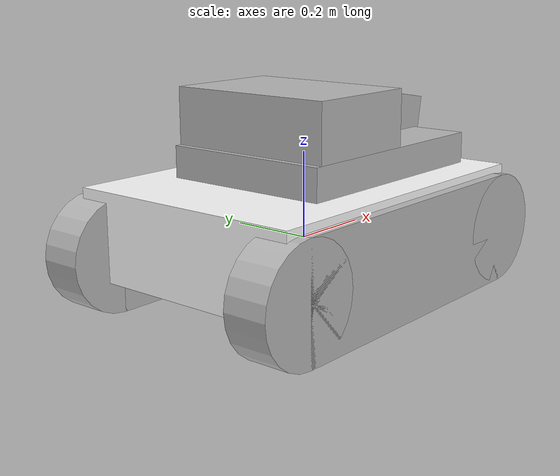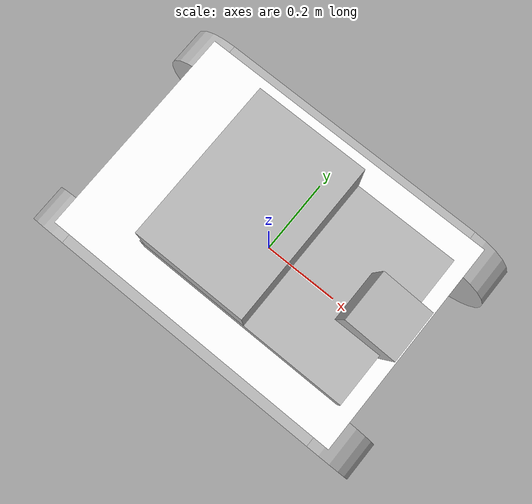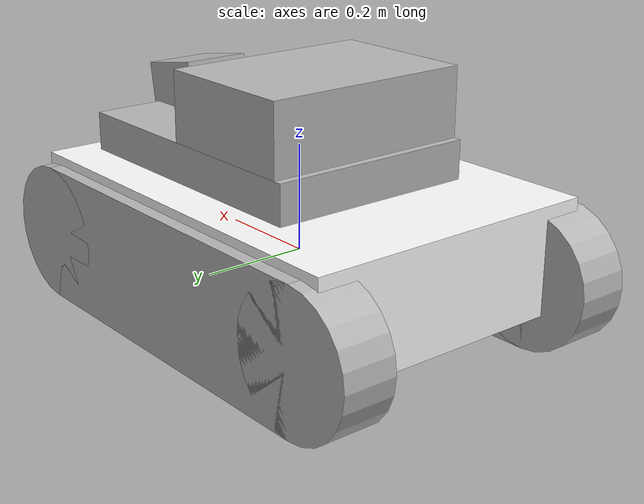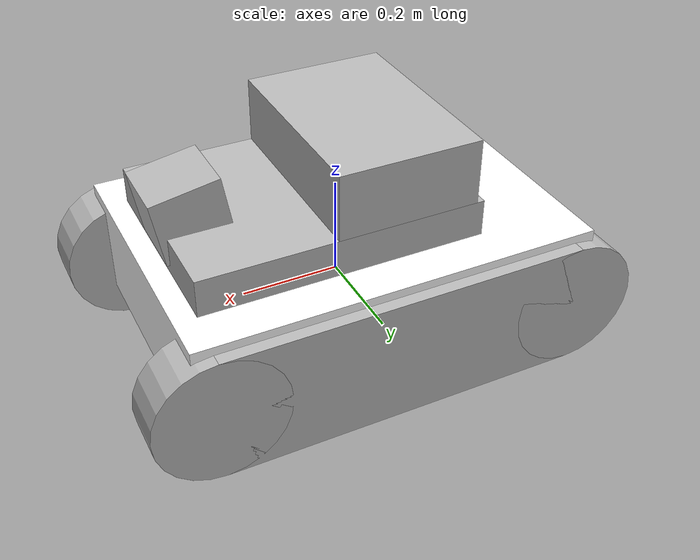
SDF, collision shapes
<?xml version='1.0' encoding='utf-8'?>
<sdf version="1.6">
    <model name="ctu_cras_norlab_marmotte_sensor_config_1">
        <link name="base_link">
            <pose frame="">0 0 0 0 -0 0</pose>
            <inertial>
                <pose frame="">0.0 0.0 0.0 0 0 0</pose>
                <mass>29.053</mass>
                <!-- base link + 8 wheels: 29.053 + 8*1.5 = 41.053 -->
                <inertia>
                    <ixx>2.411</ixx>
                    <ixy>0.0</ixy>
                    <ixz>0.0</ixz>
                    <iyy>4.173</iyy>
                    <iyz>0.0</iyz>
                    <izz>4.745</izz>
                </inertia>
            </inertial>
            <collision name="base_link_collision_bottom">
                <pose frame="">0 0 0.046 0 0 0</pose>
                <geometry>
                    <box>
                        <size>0.80 0.5709 0.2</size>
                    </box>
                </geometry>
            </collision>
            <visual name="Body_visual">
                <pose>0 0 -0.135 0 0 1.57</pose>
                <geometry>
                    <mesh>
                        <uri>meshes/hd2_marble_base_body_metric.dae</uri>
                    </mesh>
                </geometry>
                <material>
                    <diffuse>1.0 1.0 1.0</diffuse>
                    <specular>1.0 1.0 1.0</specular>
                    <pbr>
                        <metal>
                            <albedo_map>materials/textures/HD2_Albedo.png</albedo_map>
                            <metalness_map>materials/textures/HD2_Metalness.png</metalness_map>
                            <roughness_map>materials/textures/HD2_Roughness.png</roughness_map>
                        </metal>
                    </pbr>
                    <!-- fallback to script if no PBR support-->
                    <script>
                        <uri>materials/scripts/</uri>
                        <uri>materials/textures/</uri>
                        <name>HD/HD2_Diffuse</name>
                    </script>
                </material>
            </visual>
        </link>
        <link name="sensor_rack">
            <inertial>
                <!-- Based on the CAD of the sensor rack (metal plates, ITEM tubes, sensors) -->
                <mass>10.40255</mass>
                <inertia>
                    <ixx>0.193</ixx>
                    <ixy>-0.0031</ixy>
                    <ixz>0.00912</ixz>
                    <iyy>0.301</iyy>
                    <iyz>0.00313</iyz>
                    <izz>0.35676</izz>
                </inertia>
                <pose frame="">0.28 0.2 0.06 0 -0 0</pose>
            </inertial>
            <pose frame="">-0.198535 -0.198243 0.068995 -1e-06 -0 -1.3e-05</pose>
            <self_collide>0</self_collide>
            <enable_wind>0</enable_wind>
            <kinematic>0</kinematic>
            <visual name="visual">
                <pose frame="">0 0 0 0 -0 0</pose>
                <geometry>
                    <mesh>
                        <uri>meshes/sensor_rack_lowres_shallow_laser.dae</uri>
                        <scale>1 1 1</scale>
                    </mesh>
                </geometry>
                <transparency>0</transparency>
                <cast_shadows>1</cast_shadows>
            </visual>
            <collision name="collision_base">
                <laser_retro>0</laser_retro>
                <max_contacts>10</max_contacts>
                <pose frame="">0.275 0.2 0.075 0 -0 0</pose>
                <geometry>
                    <box>
                        <size>0.56 0.4 0.15</size>
                    </box>
                </geometry>
                <surface>
                    <friction>
                        <ode>
                            <mu>1</mu>
                            <mu2>1</mu2>
                            <fdir1>0 0 0</fdir1>
                            <slip1>0</slip1>
                            <slip2>0</slip2>
                        </ode>
                    </friction>
                    <contact>
                        <collide_without_contact>0</collide_without_contact>
                        <collide_without_contact_bitmask>1</collide_without_contact_bitmask>
                        <collide_bitmask>1</collide_bitmask>
                        <ode>
                            <soft_cfm>0</soft_cfm>
                            <soft_erp>0.2</soft_erp>
                            <kp>1e+13</kp>
                            <kd>1</kd>
                            <max_vel>0.01</max_vel>
                            <min_depth>0</min_depth>
                        </ode>
                    </contact>
                </surface>
            </collision>
            <collision name="collision_top">
                <laser_retro>0</laser_retro>
                <max_contacts>10</max_contacts>
                <pose frame="">0.15 0.2 0.215 0 -0 0</pose>
                <geometry>
                    <box>
                        <size>0.28 0.4 0.13</size>
                    </box>
                </geometry>
                <surface>
                    <friction>
                        <ode>
                            <mu>1</mu>
                            <mu2>1</mu2>
                            <fdir1>0 0 0</fdir1>
                            <slip1>0</slip1>
                            <slip2>0</slip2>
                        </ode>
                    </friction>
                    <contact>
                        <collide_without_contact>0</collide_without_contact>
                        <collide_without_contact_bitmask>1</collide_without_contact_bitmask>
                        <collide_bitmask>1</collide_bitmask>
                        <ode>
                            <soft_cfm>0</soft_cfm>
                            <soft_erp>0.2</soft_erp>
                            <kp>1e+13</kp>
                            <kd>1</kd>
                            <max_vel>0.01</max_vel>
                            <min_depth>0</min_depth>
                        </ode>
                    </contact>
                </surface>
            </collision>
            <collision name="collision_laser">
                <laser_retro>0</laser_retro>
                <max_contacts>10</max_contacts>
                <pose frame="">0.505 0.2 0.17 0 0.17 0</pose>
                <geometry>
                    <box>
                        <size>0.135 0.13 0.13</size>
                    </box>
                </geometry>
                <surface>
                    <friction>
                        <ode>
                            <mu>1</mu>
                            <mu2>1</mu2>
                            <fdir1>0 0 0</fdir1>
                            <slip1>0</slip1>
                            <slip2>0</slip2>
                        </ode>
                    </friction>
                    <contact>
                        <collide_without_contact>0</collide_without_contact>
                        <collide_without_contact_bitmask>1</collide_without_contact_bitmask>
                        <collide_bitmask>1</collide_bitmask>
                        <ode>
                            <soft_cfm>0</soft_cfm>
                            <soft_erp>0.2</soft_erp>
                            <kp>1e+13</kp>
                            <kd>1</kd>
                            <max_vel>0.01</max_vel>
                            <min_depth>0</min_depth>
                        </ode>
                    </contact>
                </surface>
            </collision>
            <sensor name="imu_sensor" type="imu">
                <always_on>1</always_on>
                <update_rate>50</update_rate>
                <imu>
                    <enable_orientation>0</enable_orientation>
                    <angular_velocity>
                        <x>
                            <noise type="gaussian">
                                <mean>0</mean>
                                <stddev>0.009</stddev>
                                <bias_mean>0.00075</bias_mean>
                                <bias_stddev>0.005</bias_stddev>
                                <dynamic_bias_stddev>0.00002</dynamic_bias_stddev>
                                <dynamic_bias_correlation_time>400.0</dynamic_bias_correlation_time>
                                <precision>0.00025</precision>
                            </noise>
                        </x>
                        <y>
                            <noise type="gaussian">
                                <mean>0</mean>
                                <stddev>0.009</stddev>
                                <bias_mean>0.00075</bias_mean>
                                <bias_stddev>0.005</bias_stddev>
                                <dynamic_bias_stddev>0.00002</dynamic_bias_stddev>
                                <dynamic_bias_correlation_time>400.0</dynamic_bias_correlation_time>
                                <precision>0.00025</precision>
                            </noise>
                        </y>
                        <z>
                            <noise type="gaussian">
                                <mean>0</mean>
                                <stddev>0.009</stddev>
                                <bias_mean>0.00075</bias_mean>
                                <bias_stddev>0.005</bias_stddev>
                                <dynamic_bias_stddev>0.00002</dynamic_bias_stddev>
                                <dynamic_bias_correlation_time>400.0</dynamic_bias_correlation_time>
                                <precision>0.00025</precision>
                            </noise>
                        </z>
                    </angular_velocity>
                    <linear_acceleration>
                        <x>
                            <noise type="gaussian">
                                <mean>0</mean>
                                <stddev>0.021</stddev>
                                <bias_mean>0.05</bias_mean>
                                <bias_stddev>0.0075</bias_stddev>
                                <dynamic_bias_stddev>0.000375</dynamic_bias_stddev>
                                <dynamic_bias_correlation_time>175.0</dynamic_bias_correlation_time>
                                <precision>0.005</precision>
                            </noise>
                        </x>
                        <y>
                            <noise type="gaussian">
                                <mean>0</mean>
                                <stddev>0.021</stddev>
                                <bias_mean>0.05</bias_mean>
                                <bias_stddev>0.0075</bias_stddev>
                                <dynamic_bias_stddev>0.000375</dynamic_bias_stddev>
                                <dynamic_bias_correlation_time>175.0</dynamic_bias_correlation_time>
                                <precision>0.005</precision>
                            </noise>
                        </y>
                        <z>
                            <noise type="gaussian">
                                <mean>0</mean>
                                <stddev>0.021</stddev>
                                <bias_mean>0.05</bias_mean>
                                <bias_stddev>0.0075</bias_stddev>
                                <dynamic_bias_stddev>0.000375</dynamic_bias_stddev>
                                <dynamic_bias_correlation_time>175.0</dynamic_bias_correlation_time>
                                <precision>0.005</precision>
                            </noise>
                        </z>
                    </linear_acceleration>
                </imu>
            </sensor>
            <sensor name="camera_0" type="camera">
                <camera name="camera_0">
                    <horizontal_fov>1.50971</horizontal_fov>
                    <image>
                        <width>1920</width>
                        <height>1200</height>
                        <format>R8G8B8</format>
                    </image>
                    <clip>
                        <near>0.4</near>
                        <far>300</far>
                    </clip>
                    <noise>
                        <type>gaussian</type>
                        <mean>0</mean>
                        <stddev>0.007</stddev>
                    </noise>
                    <lens>
                        <intrinsics>
                            <fx>1020.51</fx>
                            <fy>1020.51</fy>
                            <cx>959.5</cx>
                            <cy>599.5</cy>
                            <s>0</s>
                        </intrinsics>
                        <type>stereographic</type>
                        <scale_to_hfov>1</scale_to_hfov>
                    </lens>
                </camera>
                <always_on>1</always_on>
                <update_rate>9</update_rate>
                <visualize>1</visualize>
                <pose frame="">0.34655 0.07561 0.08992 0 -0.26 -0.58</pose>
            </sensor>
            <sensor name="camera_1" type="camera">
                <camera name="camera_1">
                    <horizontal_fov>1.50971</horizontal_fov>
                    <image>
                        <width>1920</width>
                        <height>1200</height>
                        <format>R8G8B8</format>
                    </image>
                    <clip>
                        <near>0.4</near>
                        <far>300</far>
                    </clip>
                    <noise>
                        <type>gaussian</type>
                        <mean>0</mean>
                        <stddev>0.007</stddev>
                    </noise>
                    <lens>
                        <intrinsics>
                            <fx>1020.51</fx>
                            <fy>1020.51</fy>
                            <cx>959.5</cx>
                            <cy>599.5</cy>
                            <s>0</s>
                        </intrinsics>
                        <type>stereographic</type>
                        <scale_to_hfov>1</scale_to_hfov>
                    </lens>
                </camera>
                <always_on>1</always_on>
                <update_rate>9</update_rate>
                <visualize>1</visualize>
                <pose frame="">0.16082 0.10326 0.08992 0 -0.26 -1.88</pose>
            </sensor>
            <sensor name="camera_2" type="camera">
                <camera name="camera_2">
                    <horizontal_fov>1.50971</horizontal_fov>
                    <image>
                        <width>1920</width>
                        <height>1200</height>
                        <format>R8G8B8</format>
                    </image>
                    <clip>
                        <near>0.4</near>
                        <far>300</far>
                    </clip>
                    <noise>
                        <type>gaussian</type>
                        <mean>0</mean>
                        <stddev>0.007</stddev>
                    </noise>
                    <lens>
                        <intrinsics>
                            <fx>1020.51</fx>
                            <fy>1020.51</fy>
                            <cx>959.5</cx>
                            <cy>599.5</cy>
                            <s>0</s>
                        </intrinsics>
                        <type>stereographic</type>
                        <scale_to_hfov>1</scale_to_hfov>
                    </lens>
                </camera>
                <always_on>1</always_on>
                <update_rate>9</update_rate>
                <pose frame="">0.08658 0.2358 0.08992 0 -0.26 -3.14</pose>
                <visualize>1</visualize>
            </sensor>
            <sensor name="camera_3" type="camera">
                <camera name="camera_3">
                    <horizontal_fov>1.50971</horizontal_fov>
                    <image>
                        <width>1920</width>
                        <height>1200</height>
                        <format>R8G8B8</format>
                    </image>
                    <clip>
                        <near>0.4</near>
                        <far>300</far>
                    </clip>
                    <noise>
                        <type>gaussian</type>
                        <mean>0</mean>
                        <stddev>0.007</stddev>
                    </noise>
                    <lens>
                        <intrinsics>
                            <fx>1020.51</fx>
                            <fy>1020.51</fy>
                            <cx>959.5</cx>
                            <cy>599.5</cy>
                            <s>0</s>
                        </intrinsics>
                        <type>stereographic</type>
                        <scale_to_hfov>1</scale_to_hfov>
                    </lens>
                </camera>
                <always_on>1</always_on>
                <update_rate>9</update_rate>
                <pose frame="">0.22978 0.31824 0.08992 0 -0.26 1.88</pose>
                <visualize>1</visualize>
            </sensor>
            <sensor name="camera_4" type="camera">
                <camera name="camera_4">
                    <horizontal_fov>1.50971</horizontal_fov>
                    <image>
                        <width>1920</width>
                        <height>1200</height>
                        <format>R8G8B8</format>
                    </image>
                    <clip>
                        <near>0.4</near>
                        <far>300</far>
                    </clip>
                    <noise>
                        <type>gaussian</type>
                        <mean>0</mean>
                        <stddev>0.007</stddev>
                    </noise>
                    <lens>
                        <intrinsics>
                            <fx>1020.51</fx>
                            <fy>1020.51</fy>
                            <cx>959.5</cx>
                            <cy>599.5</cy>
                            <s>0</s>
                        </intrinsics>
                        <type>stereographic</type>
                        <scale_to_hfov>1</scale_to_hfov>
                    </lens>
                </camera>
                <always_on>1</always_on>
                <update_rate>9</update_rate>
                <pose frame="">0.38916 0.26483 0.08992 0 -0.26 0.58</pose>
                <visualize>1</visualize>
            </sensor>
            <sensor name="camera_5" type="camera">
                <camera name="camera_5">
                    <horizontal_fov>1.50971</horizontal_fov>
                    <image>
                        <width>1920</width>
                        <height>1200</height>
                        <format>R8G8B8</format>
                    </image>
                    <clip>
                        <near>0.4</near>
                        <far>300</far>
                    </clip>
                    <noise>
                        <type>gaussian</type>
                        <mean>0</mean>
                        <stddev>0.007</stddev>
                    </noise>
                    <lens>
                        <intrinsics>
                            <fx>1020.51</fx>
                            <fy>1020.51</fy>
                            <cx>959.5</cx>
                            <cy>599.5</cy>
                            <s>0</s>
                        </intrinsics>
                        <type>stereographic</type>
                        <scale_to_hfov>1</scale_to_hfov>
                    </lens>
                </camera>
                <always_on>1</always_on>
                <update_rate>9</update_rate>
                <pose frame="">0.16561 0.19955 0.20529 0 -1.57 0.0</pose>
                <visualize>1</visualize>
            </sensor>
            <sensor name="camera_realsense" type="rgbd_camera">
                <camera name="camera_realsense">
                    <horizontal_fov>1.5184</horizontal_fov>
                    <lens>
                        <intrinsics>
                            <fx>337.22195</fx>
                            <fy>337.22195</fy>
                            <cx>320.5</cx>
                            <cy>240.5</cy>
                            <s>0</s>
                        </intrinsics>
                    </lens>
                    <distortion>
                        <k1>0.0</k1>
                        <k2>0.0</k2>
                        <k3>0.0</k3>
                        <p1>0.0</p1>
                        <p2>0.0</p2>
                        <center>0.5 0.5</center>
                    </distortion>
                    <image>
                        <width>640</width>
                        <height>480</height>
                        <format>R8G8B8</format>
                    </image>
                    <clip>
                        <near>0.4</near>
                        <far>300</far>
                    </clip>
                    <depth_camera>
                        <clip>
                            <near>0.4</near>
                            <far>10</far>
                        </clip>
                    </depth_camera>
                    <noise>
                        <type>gaussian</type>
                        <mean>0</mean>
                        <stddev>0.007</stddev>
                    </noise>
                </camera>
                <always_on>1</always_on>
                <update_rate>30</update_rate>
                <pose frame="">0.01923 0.18205 0.200 0.0 0.35 -3.14</pose>
            </sensor>
            <!-- Robosense RS-LiDAR-16 or Leishen C16 Series -->
            <sensor name="front_lidar" type="gpu_lidar">
                <update_rate>10</update_rate>
                <visualize>1</visualize>
                <lidar>
                    <scan>
                        <horizontal>
                            <samples>1800</samples>
                            <resolution>1</resolution>
                            <min_angle>-3.141592</min_angle>
                            <max_angle>3.141592</max_angle>
                        </horizontal>
                        <vertical>
                            <samples>16</samples>
                            <resolution>1</resolution>
                            <min_angle>-0.26</min_angle>
                            <max_angle>0.26</max_angle>
                        </vertical>
                    </scan>
                    <range>
                        <min>0.2</min>
                        <max>150</max>
                        <resolution>0.01</resolution>
                    </range>
                    <noise>
                        <type>gaussian</type>
                        <mean>0</mean>
                        <stddev>0.01</stddev>
                    </noise>
                </lidar>
                <pose frame="">0.507 0.19955 0.20879 0 0.17 0</pose>
            </sensor>
            <light name="light_0" type="spot">
                <pose>0.40354 0.11441 0.09843 0 -1.83 -0.58</pose>
                <cast_shadows>1</cast_shadows>
                <attenuation>
                    <range>50</range>
                    <linear>0</linear>
                    <constant>0.1</constant>
                    <quadratic>0.0025</quadratic>
                </attenuation>
                <diffuse>0.5 0.5 0.4 1</diffuse>
                <specular>0.5 0.5 0.4 1</specular>
                <spot>
                    <inner_angle>1.4</inner_angle>
                    <!-- Matching the lens FOV -->
                    <outer_angle>1.5</outer_angle>
                    <falloff>1</falloff>
                </spot>
                <direction>0 0 -1</direction>
            </light>
            <light name="light_1" type="spot">
                <pose>0.21534 0.06105 0.09843 0 -1.83 -1.88</pose>
                <cast_shadows>1</cast_shadows>
                <attenuation>
                    <range>50</range>
                    <linear>0</linear>
                    <constant>0.1</constant>
                    <quadratic>0.0025</quadratic>
                </attenuation>
                <diffuse>0.5 0.5 0.4 1</diffuse>
                <specular>0.5 0.5 0.4 1</specular>
                <spot>
                    <inner_angle>1.4</inner_angle>
                    <outer_angle>1.5</outer_angle>
                    <falloff>1</falloff>
                </spot>
                <direction>0 0 -1</direction>
            </light>
            <light name="light_2" type="spot">
                <pose>0.06329 0.17091 0.09843 0 -1.83 -3.14</pose>
                <cast_shadows>1</cast_shadows>
                <attenuation>
                    <range>50</range>
                    <linear>0</linear>
                    <constant>0.1</constant>
                    <quadratic>0.0025</quadratic>
                </attenuation>
                <diffuse>0.5 0.5 0.4 1</diffuse>
                <specular>0.5 0.5 0.4 1</specular>
                <spot>
                    <inner_angle>1.4</inner_angle>
                    <outer_angle>1.5</outer_angle>
                    <falloff>1</falloff>
                </spot>
                <direction>0 0 -1</direction>
            </light>
            <light name="light_3" type="spot">
                <pose>0.16087 0.32035 0.09843 0 -1.83 1.88</pose>
                <cast_shadows>1</cast_shadows>
                <attenuation>
                    <range>50</range>
                    <linear>0</linear>
                    <constant>0.1</constant>
                    <quadratic>0.0025</quadratic>
                </attenuation>
                <diffuse>0.5 0.5 0.4 1</diffuse>
                <specular>0.5 0.5 0.4 1</specular>
                <spot>
                    <inner_angle>1.4</inner_angle>
                    <outer_angle>1.5</outer_angle>
                    <falloff>1</falloff>
                </spot>
                <direction>0 0 -1</direction>
            </light>
            <light name="light_4" type="spot">
                <pose>0.36987 0.33102 0.09843 0 -1.83 0.58</pose>
                <cast_shadows>1</cast_shadows>
                <attenuation>
                    <range>50</range>
                    <linear>0</linear>
                    <constant>0.1</constant>
                    <quadratic>0.0025</quadratic>
                </attenuation>
                <diffuse>0.5 0.5 0.4 1</diffuse>
                <specular>0.5 0.5 0.4 1</specular>
                <spot>
                    <inner_angle>1.4</inner_angle>
                    <outer_angle>1.5</outer_angle>
                    <falloff>1</falloff>
                </spot>
                <direction>0 0 -1</direction>
            </light>
            <light name="light_5" type="spot">
                <pose>0.22561 0.19955 0.22567 0 3.14 0</pose>
                <cast_shadows>1</cast_shadows>
                <attenuation>
                    <range>50</range>
                    <linear>0</linear>
                    <constant>0.1</constant>
                    <quadratic>0.0025</quadratic>
                </attenuation>
                <diffuse>0.5 0.5 0.4 1</diffuse>
                <specular>0.5 0.5 0.4 1</specular>
                <spot>
                    <inner_angle>1.4</inner_angle>
                    <outer_angle>1.5</outer_angle>
                    <falloff>1</falloff>
                </spot>
                <direction>0 0 -1</direction>
            </light>
            <light name="light_front_right" type="spot">
                <pose>0.28511 0.08955 0.19767 0 -1.570 0</pose>
                <cast_shadows>1</cast_shadows>
                <attenuation>
                    <range>50</range>
                    <linear>0</linear>
                    <constant>0.1</constant>
                    <quadratic>0.0025</quadratic>
                </attenuation>
                <diffuse>0.5 0.5 0.4 1</diffuse>
                <specular>0.5 0.5 0.4 1</specular>
                <spot>
                    <inner_angle>1.4</inner_angle>
                    <outer_angle>1.5</outer_angle>
                    <falloff>1</falloff>
                </spot>
                <direction>0 0 -1</direction>
            </light>
            <light name="light_front_left" type="spot">
                <pose>0.28511 0.30955 0.19767 0 -1.570 0</pose>
                <cast_shadows>1</cast_shadows>
                <attenuation>
                    <range>50</range>
                    <linear>0</linear>
                    <constant>0.1</constant>
                    <quadratic>0.0025</quadratic>
                </attenuation>
                <diffuse>0.5 0.5 0.4 1</diffuse>
                <specular>0.5 0.5 0.4 1</specular>
                <spot>
                    <inner_angle>1.4</inner_angle>
                    <outer_angle>1.5</outer_angle>
                    <falloff>1</falloff>
                </spot>
                <direction>0 0 -1</direction>
            </light>
        </link>
        <joint name="base_link_JOINT_0" type="fixed">
            <parent>base_link</parent>
            <child>sensor_rack</child>
            <pose frame="">0 0 0 0 -0 0</pose>
            <physics>
                <ode>
                    <limit>
                        <cfm>0</cfm>
                        <erp>0.2</erp>
                    </limit>
                    <suspension>
                        <cfm>0</cfm>
                        <erp>0.2</erp>
                    </suspension>
                </ode>
            </physics>
        </joint>
        <!-- Left Track  -->
        <link name="left_track">
            <pose frame="">0 0.26 0.00 0 -0 0</pose>
            <inertial>
                <pose frame="">0 0 0 0 -0 0</pose>
                <mass>6.0</mass>
                <inertia>
                    <!-- Inertia of a 6 kg box 0.1x0.258x0.72 m -->
                    <ixx>0.03828</ixx>
                    <ixy>0</ixy>
                    <ixz>0</ixz>
                    <iyy>0.2925</iyy>
                    <iyz>0</iyz>
                    <izz>0.2642</izz>
                </inertia>
            </inertial>
            <collision name="front_left_wheel_link_collision">
                <pose frame="">0.360 0 0 1.5707963267948966 -0 0</pose>
                <geometry>
                    <cylinder>
                        <length>0.1</length>
                        <radius>0.129</radius>
                    </cylinder>
                </geometry>
                <surface>
                    <contact>
                        <ode>
                            <kp>1e+07</kp>
                            <kd>1</kd>
                        </ode>
                    </contact>
                    <friction>
                        <ode>
                            <mu>1</mu>
                            <mu2>150</mu2>
                            <slip1>0.001</slip1>
                            <slip2>0</slip2>
                            <fdir1>0 0 1</fdir1>
                        </ode>
                    </friction>
                </surface>
            </collision>
            <collision name="rear_left_wheel_link_collision">
                <pose frame="">-0.36 0 0 1.5707963267948966 -0 0</pose>
                <geometry>
                    <cylinder>
                        <length>0.1</length>
                        <radius>0.129</radius>
                    </cylinder>
                </geometry>
                <surface>
                    <contact>
                        <ode>
                            <kp>1e+07</kp>
                            <kd>1</kd>
                        </ode>
                    </contact>
                    <friction>
                        <ode>
                            <mu>1</mu>
                            <mu2>150</mu2>
                            <slip1>0.001</slip1>
                            <slip2>0</slip2>
                            <fdir1>0 0 1</fdir1>
                        </ode>
                    </friction>
                </surface>
            </collision>
            <collision name="left_track_box_collision">
                <geometry>
                    <box>
                        <size>0.72 0.1 0.258</size>
                    </box>
                </geometry>
                <surface>
                    <contact>
                        <ode>
                            <kp>1e+07</kp>
                            <kd>1</kd>
                        </ode>
                    </contact>
                    <friction>
                        <ode>
                            <mu>1</mu>
                            <mu2>150</mu2>
                            <slip1>0.001</slip1>
                            <slip2>0</slip2>
                            <fdir1>0 0 1</fdir1>
                        </ode>
                    </friction>
                </surface>
            </collision>
        </link>
        <joint name="left_track_j" type="fixed">
            <child>left_track</child>
            <parent>base_link</parent>
        </joint>
        <!-- Right Track  -->
        <link name="right_track">
            <pose frame="">0 -0.26 0.00 0 -0 0</pose>
            <inertial>
                <pose frame="">0 0 0 0 -0 0</pose>
                <mass>6.0</mass>
                <inertia>
                    <!-- Inertia of a 6 kg box 0.1x0.258x0.72 m -->
                    <ixx>0.03828</ixx>
                    <ixy>0</ixy>
                    <ixz>0</ixz>
                    <iyy>0.2925</iyy>
                    <iyz>0</iyz>
                    <izz>0.2642</izz>
                </inertia>
            </inertial>
            <collision name="front_right_wheel_link_collision">
                <pose frame="">0.360 0 0 1.5707963267948966 -0 0</pose>
                <geometry>
                    <cylinder>
                        <length>0.1</length>
                        <radius>0.129</radius>
                    </cylinder>
                </geometry>
                <surface>
                    <contact>
                        <ode>
                            <kp>1e+07</kp>
                            <kd>1</kd>
                        </ode>
                    </contact>
                    <friction>
                        <ode>
                            <mu>1</mu>
                            <mu2>150</mu2>
                            <slip1>0.001</slip1>
                            <slip2>0</slip2>
                            <fdir1>0 0 1</fdir1>
                        </ode>
                    </friction>
                </surface>
            </collision>
            <collision name="rear_right_wheel_link_collision">
                <pose frame="">-0.36 0 0 1.5707963267948966 -0 0</pose>
                <geometry>
                    <cylinder>
                        <length>0.1</length>
                        <radius>0.129</radius>
                    </cylinder>
                </geometry>
                <surface>
                    <contact>
                        <ode>
                            <kp>1e+07</kp>
                            <kd>1</kd>
                        </ode>
                    </contact>
                    <friction>
                        <ode>
                            <mu>1</mu>
                            <mu2>150</mu2>
                            <slip1>0.001</slip1>
                            <slip2>0</slip2>
                            <fdir1>0 0 1</fdir1>
                        </ode>
                    </friction>
                </surface>
            </collision>
            <collision name="right_track_box_collision">
                <geometry>
                    <box>
                        <size>0.72 0.1 0.258</size>
                    </box>
                </geometry>
                <surface>
                    <contact>
                        <ode>
                            <kp>1e+07</kp>
                            <kd>1</kd>
                        </ode>
                    </contact>
                    <friction>
                        <ode>
                            <mu>1</mu>
                            <mu2>150</mu2>
                            <slip1>0.001</slip1>
                            <slip2>0</slip2>
                            <fdir1>0 0 1</fdir1>
                        </ode>
                    </friction>
                </surface>
            </collision>
        </link>
        <joint name="right_track_j" type="fixed">
            <child>right_track</child>
            <parent>base_link</parent>
        </joint>
        <plugin name="ignition::gazebo::systems::TrackController" filename="libignition-gazebo-track-controller-system.so">
            <link>left_track</link>
            <min_velocity>-1</min_velocity>
            <max_velocity>1</max_velocity>
            <min_acceleration>-3</min_acceleration>
            <max_acceleration>3</max_acceleration>
        </plugin>
        <plugin name="ignition::gazebo::systems::TrackController" filename="libignition-gazebo-track-controller-system.so">
            <link>right_track</link>
            <min_velocity>-1</min_velocity>
            <max_velocity>1</max_velocity>
            <min_acceleration>-3</min_acceleration>
            <max_acceleration>3</max_acceleration>
        </plugin>
        <static>0</static>
    </model>
</sdf>
